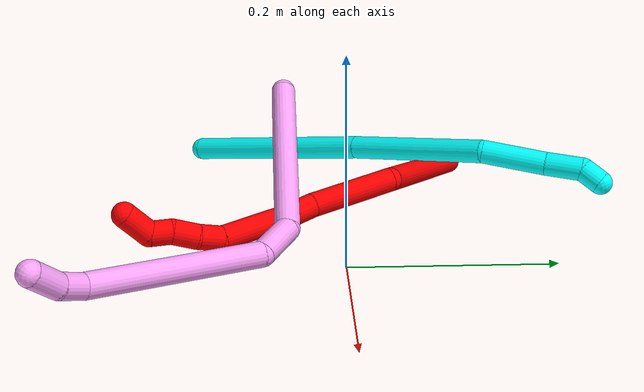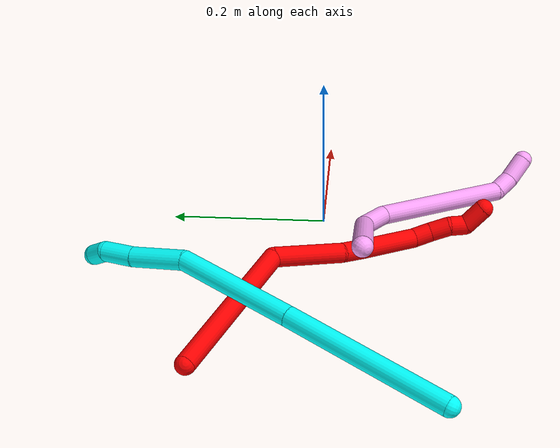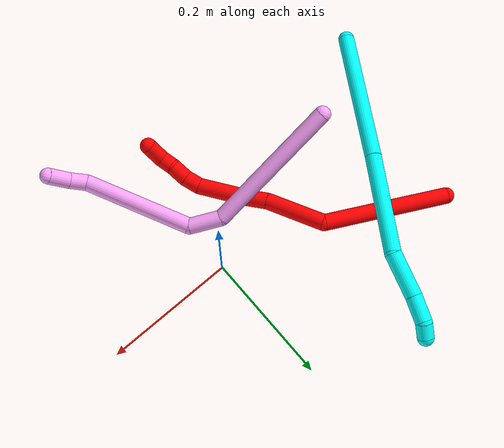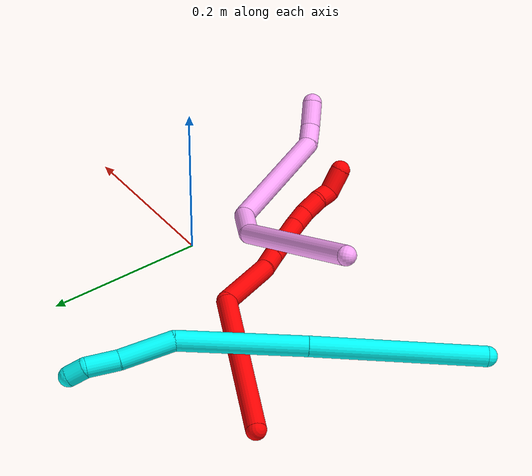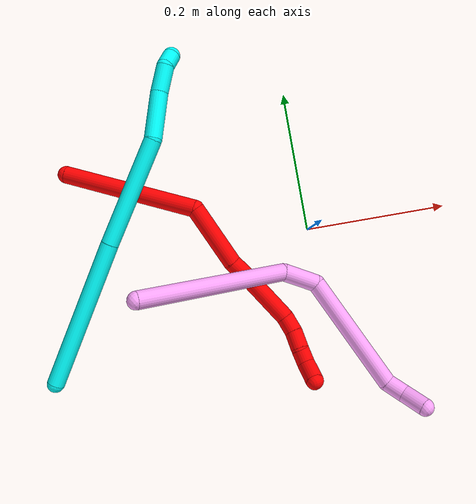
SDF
<sdf version="1.7">
 <world name="default">
  <model name="2">
   <static>0</static>
   <link name="2">
    <collision name="collision-cylinder-e_1_1_4">
     <pose>0.08837 -0.015561 -0.040432 2.77421 1.11498 2.56236</pose>
     <geometry><cylinder><radius>0.0125</radius><length>0.196837</length></cylinder></geometry>
     <surface>
      <friction><ode><mu>1.16</mu><mu2>1.16</mu2><slip1>0</slip1><slip2>0</slip2></ode></friction>
      <contact><ode><kp>1e+06</kp><kd>1</kd><max_vel>0</max_vel><min_depth>0.001</min_depth></ode></contact>
     </surface>
    </collision>
    <visual name="visual-cylinder-e_1_1_4">
     <pose>0.08837 -0.015561 -0.040432 2.77421 1.11498 2.56236</pose>
     <geometry><cylinder><radius>0.0125</radius><length>0.196837</length></cylinder></geometry>
     <material><ambient>1 0 0 1</ambient></material>
    </visual>
    <collision name="collision-cylinder-e_2_4_5">
     <pose>0.202734 -0.067827 -0.090575 1.8294 0.600317 0.764512</pose>
     <geometry><cylinder><radius>0.0125</radius><length>0.092027</length></cylinder></geometry>
     <surface>
      <friction><ode><mu>1.16</mu><mu2>1.16</mu2><slip1>0</slip1><slip2>0</slip2></ode></friction>
      <contact><ode><kp>1e+06</kp><kd>1</kd><max_vel>0</max_vel><min_depth>0.001</min_depth></ode></contact>
     </surface>
    </collision>
    <visual name="visual-cylinder-e_2_4_5">
     <pose>0.202734 -0.067827 -0.090575 1.8294 0.600317 0.764512</pose>
     <geometry><cylinder><radius>0.0125</radius><length>0.092027</length></cylinder></geometry>
     <material><ambient>1 0 0 1</ambient></material>
    </visual>
    <collision name="collision-cylinder-e_3_5_6">
     <pose>0.23849 -0.11492 -0.10571 2.05214 0.694645 1.07713</pose>
     <geometry><cylinder><radius>0.0125</radius><length>0.030505</length></cylinder></geometry>
     <surface>
      <friction><ode><mu>1.16</mu><mu2>1.16</mu2><slip1>0</slip1><slip2>0</slip2></ode></friction>
      <contact><ode><kp>1e+06</kp><kd>1</kd><max_vel>0</max_vel><min_depth>0.001</min_depth></ode></contact>
     </surface>
    </collision>
    <visual name="visual-cylinder-e_3_5_6">
     <pose>0.23849 -0.11492 -0.10571 2.05214 0.694645 1.07713</pose>
     <geometry><cylinder><radius>0.0125</radius><length>0.030505</length></cylinder></geometry>
     <material><ambient>1 0 0 1</ambient></material>
    </visual>
    <collision name="collision-cylinder-e_4_6_7">
     <pose>0.274353 -0.152266 -0.121746 1.94577 0.733263 1.02676</pose>
     <geometry><cylinder><radius>0.0125</radius><length>0.077989</length></cylinder></geometry>
     <surface>
      <friction><ode><mu>1.16</mu><mu2>1.16</mu2><slip1>0</slip1><slip2>0</slip2></ode></friction>
      <contact><ode><kp>1e+06</kp><kd>1</kd><max_vel>0</max_vel><min_depth>0.001</min_depth></ode></contact>
     </surface>
    </collision>
    <visual name="visual-cylinder-e_4_6_7">
     <pose>0.274353 -0.152266 -0.121746 1.94577 0.733263 1.02676</pose>
     <geometry><cylinder><radius>0.0125</radius><length>0.077989</length></cylinder></geometry>
     <material><ambient>1 0 0 1</ambient></material>
    </visual>
    <collision name="collision-cylinder-e_5_7_8">
     <pose>0.309256 -0.187269 -0.131206 1.42861 0.82552 0.725757</pose>
     <geometry><cylinder><radius>0.0125</radius><length>0.023962</length></cylinder></geometry>
     <surface>
      <friction><ode><mu>1.16</mu><mu2>1.16</mu2><slip1>0</slip1><slip2>0</slip2></ode></friction>
      <contact><ode><kp>1e+06</kp><kd>1</kd><max_vel>0</max_vel><min_depth>0.001</min_depth></ode></contact>
     </surface>
    </collision>
    <visual name="visual-cylinder-e_5_7_8">
     <pose>0.309256 -0.187269 -0.131206 1.42861 0.82552 0.725757</pose>
     <geometry><cylinder><radius>0.0125</radius><length>0.023962</length></cylinder></geometry>
     <material><ambient>1 0 0 1</ambient></material>
    </visual>
    <collision name="collision-cylinder-e_6_8_9">
     <pose>0.326566 -0.204296 -0.126429 1.18725 0.720477 0.497829</pose>
     <geometry><cylinder><radius>0.0125</radius><length>0.025781</length></cylinder></geometry>
     <surface>
      <friction><ode><mu>1.16</mu><mu2>1.16</mu2><slip1>0</slip1><slip2>0</slip2></ode></friction>
      <contact><ode><kp>1e+06</kp><kd>1</kd><max_vel>0</max_vel><min_depth>0.001</min_depth></ode></contact>
     </surface>
    </collision>
    <visual name="visual-cylinder-e_6_8_9">
     <pose>0.326566 -0.204296 -0.126429 1.18725 0.720477 0.497829</pose>
     <geometry><cylinder><radius>0.0125</radius><length>0.025781</length></cylinder></geometry>
     <material><ambient>1 0 0 1</ambient></material>
    </visual>
    <collision name="collision-cylinder-e_7_9_10">
     <pose>0.340971 -0.222326 -0.122453 1.53204 0.577586 0.556761</pose>
     <geometry><cylinder><radius>0.0125</radius><length>0.021613</length></cylinder></geometry>
     <surface>
      <friction><ode><mu>1.16</mu><mu2>1.16</mu2><slip1>0</slip1><slip2>0</slip2></ode></friction>
      <contact><ode><kp>1e+06</kp><kd>1</kd><max_vel>0</max_vel><min_depth>0.001</min_depth></ode></contact>
     </surface>
    </collision>
    <visual name="visual-cylinder-e_7_9_10">
     <pose>0.340971 -0.222326 -0.122453 1.53204 0.577586 0.556761</pose>
     <geometry><cylinder><radius>0.0125</radius><length>0.021613</length></cylinder></geometry>
     <material><ambient>1 0 0 1</ambient></material>
    </visual>
    <collision name="collision-cylinder-e_8_10_2">
     <pose>0.359637 -0.236097 -0.114395 0.549858 0.9546 0.289722</pose>
     <geometry><cylinder><radius>0.0125</radius><length>0.031285</length></cylinder></geometry>
     <surface>
      <friction><ode><mu>1.16</mu><mu2>1.16</mu2><slip1>0</slip1><slip2>0</slip2></ode></friction>
      <contact><ode><kp>1e+06</kp><kd>1</kd><max_vel>0</max_vel><min_depth>0.001</min_depth></ode></contact>
     </surface>
    </collision>
    <visual name="visual-cylinder-e_8_10_2">
     <pose>0.359637 -0.236097 -0.114395 0.549858 0.9546 0.289722</pose>
     <geometry><cylinder><radius>0.0125</radius><length>0.031285</length></cylinder></geometry>
     <material><ambient>1 0 0 1</ambient></material>
    </visual>
    <collision name="collision-sphere-2">
     <pose>0.372402 -0.240821 -0.106687 0 -0 0</pose>
     <geometry><sphere><radius>0.0125</radius></sphere></geometry>
     <surface>
      <friction><ode><mu>1.16</mu><mu2>1.16</mu2><slip1>0</slip1><slip2>0</slip2></ode></friction>
      <contact><ode><kp>1e+06</kp><kd>1</kd><max_vel>0</max_vel><min_depth>0.001</min_depth></ode></contact>
     </surface>
    </collision>
    <visual name="visual-sphere-2">
     <pose>0.372402 -0.240821 -0.106687 0 -0 0</pose>
     <geometry><sphere><radius>0.0125</radius></sphere></geometry>
     <material><ambient>1 0 0 1</ambient></material>
    </visual>
    <collision name="collision-sphere-10">
     <pose>0.346871 -0.231373 -0.122103 0 -0 0</pose>
     <geometry><sphere><radius>0.0125</radius></sphere></geometry>
     <surface>
      <friction><ode><mu>1.16</mu><mu2>1.16</mu2><slip1>0</slip1><slip2>0</slip2></ode></friction>
      <contact><ode><kp>1e+06</kp><kd>1</kd><max_vel>0</max_vel><min_depth>0.001</min_depth></ode></contact>
     </surface>
    </collision>
    <visual name="visual-sphere-10">
     <pose>0.346871 -0.231373 -0.122103 0 -0 0</pose>
     <geometry><sphere><radius>0.0125</radius></sphere></geometry>
     <material><ambient>1 0 0 1</ambient></material>
    </visual>
    <collision name="collision-sphere-9">
     <pose>0.33507 -0.213279 -0.122804 0 -0 0</pose>
     <geometry><sphere><radius>0.0125</radius></sphere></geometry>
     <surface>
      <friction><ode><mu>1.16</mu><mu2>1.16</mu2><slip1>0</slip1><slip2>0</slip2></ode></friction>
      <contact><ode><kp>1e+06</kp><kd>1</kd><max_vel>0</max_vel><min_depth>0.001</min_depth></ode></contact>
     </surface>
    </collision>
    <visual name="visual-sphere-9">
     <pose>0.33507 -0.213279 -0.122804 0 -0 0</pose>
     <geometry><sphere><radius>0.0125</radius></sphere></geometry>
     <material><ambient>1 0 0 1</ambient></material>
    </visual>
    <collision name="collision-sphere-4">
     <pose>0.17674 -0.031121 -0.080865 0 -0 0</pose>
     <geometry><sphere><radius>0.0125</radius></sphere></geometry>
     <surface>
      <friction><ode><mu>1.16</mu><mu2>1.16</mu2><slip1>0</slip1><slip2>0</slip2></ode></friction>
      <contact><ode><kp>1e+06</kp><kd>1</kd><max_vel>0</max_vel><min_depth>0.001</min_depth></ode></contact>
     </surface>
    </collision>
    <visual name="visual-sphere-4">
     <pose>0.17674 -0.031121 -0.080865 0 -0 0</pose>
     <geometry><sphere><radius>0.0125</radius></sphere></geometry>
     <material><ambient>1 0 0 1</ambient></material>
    </visual>
    <collision name="collision-sphere-1">
     <geometry><sphere><radius>0.0125</radius></sphere></geometry>
     <surface>
      <friction><ode><mu>1.16</mu><mu2>1.16</mu2><slip1>0</slip1><slip2>0</slip2></ode></friction>
      <contact><ode><kp>1e+06</kp><kd>1</kd><max_vel>0</max_vel><min_depth>0.001</min_depth></ode></contact>
     </surface>
    </collision>
    <visual name="visual-sphere-1">
     <geometry><sphere><radius>0.0125</radius></sphere></geometry>
     <material><ambient>1 0 0 1</ambient></material>
    </visual>
    <collision name="collision-sphere-8">
     <pose>0.318061 -0.195313 -0.130054 0 -0 0</pose>
     <geometry><sphere><radius>0.0125</radius></sphere></geometry>
     <surface>
      <friction><ode><mu>1.16</mu><mu2>1.16</mu2><slip1>0</slip1><slip2>0</slip2></ode></friction>
      <contact><ode><kp>1e+06</kp><kd>1</kd><max_vel>0</max_vel><min_depth>0.001</min_depth></ode></contact>
     </surface>
    </collision>
    <visual name="visual-sphere-8">
     <pose>0.318061 -0.195313 -0.130054 0 -0 0</pose>
     <geometry><sphere><radius>0.0125</radius></sphere></geometry>
     <material><ambient>1 0 0 1</ambient></material>
    </visual>
    <collision name="collision-sphere-5">
     <pose>0.228727 -0.104533 -0.100284 0 -0 0</pose>
     <geometry><sphere><radius>0.0125</radius></sphere></geometry>
     <surface>
      <friction><ode><mu>1.16</mu><mu2>1.16</mu2><slip1>0</slip1><slip2>0</slip2></ode></friction>
      <contact><ode><kp>1e+06</kp><kd>1</kd><max_vel>0</max_vel><min_depth>0.001</min_depth></ode></contact>
     </surface>
    </collision>
    <visual name="visual-sphere-5">
     <pose>0.228727 -0.104533 -0.100284 0 -0 0</pose>
     <geometry><sphere><radius>0.0125</radius></sphere></geometry>
     <material><ambient>1 0 0 1</ambient></material>
    </visual>
    <collision name="collision-sphere-6">
     <pose>0.248254 -0.125307 -0.111135 0 -0 0</pose>
     <geometry><sphere><radius>0.0125</radius></sphere></geometry>
     <surface>
      <friction><ode><mu>1.16</mu><mu2>1.16</mu2><slip1>0</slip1><slip2>0</slip2></ode></friction>
      <contact><ode><kp>1e+06</kp><kd>1</kd><max_vel>0</max_vel><min_depth>0.001</min_depth></ode></contact>
     </surface>
    </collision>
    <visual name="visual-sphere-6">
     <pose>0.248254 -0.125307 -0.111135 0 -0 0</pose>
     <geometry><sphere><radius>0.0125</radius></sphere></geometry>
     <material><ambient>1 0 0 1</ambient></material>
    </visual>
    <collision name="collision-sphere-7">
     <pose>0.300451 -0.179226 -0.132357 0 -0 0</pose>
     <geometry><sphere><radius>0.0125</radius></sphere></geometry>
     <surface>
      <friction><ode><mu>1.16</mu><mu2>1.16</mu2><slip1>0</slip1><slip2>0</slip2></ode></friction>
      <contact><ode><kp>1e+06</kp><kd>1</kd><max_vel>0</max_vel><min_depth>0.001</min_depth></ode></contact>
     </surface>
    </collision>
    <visual name="visual-sphere-7">
     <pose>0.300451 -0.179226 -0.132357 0 -0 0</pose>
     <geometry><sphere><radius>0.0125</radius></sphere></geometry>
     <material><ambient>1 0 0 1</ambient></material>
    </visual>
    <inertial>
     <pose>0.198347 -0.093263 -0.083285 0 -0 0</pose>
     <mass>0.5</mass>
     <inertia>
      <ixx>8.3e-05</ixx>
      <ixy>0</ixy>
      <ixz>0</ixz>
      <iyy>0.00086</iyy>
      <iyz>0</iyz>
      <izz>-0.000469</izz>
     </inertia>
    </inertial>
   </link>
   <pose>-0.328457 0.136236 0.011935 0.535901 -0.600069 -0.514271</pose>
  </model>
  <model name="3">
   <static>0</static>
   <link name="3">
    <collision name="collision-cylinder-e_1_1_4">
     <pose>0.033518 0.037957 -0.093852 -2.75727 0.319726 -1.38402</pose>
     <geometry><cylinder><radius>0.0125</radius><length>0.213283</length></cylinder></geometry>
     <surface>
      <friction><ode><mu>1.16</mu><mu2>1.16</mu2><slip1>0</slip1><slip2>0</slip2></ode></friction>
      <contact><ode><kp>1e+06</kp><kd>1</kd><max_vel>0</max_vel><min_depth>0.001</min_depth></ode></contact>
     </surface>
    </collision>
    <visual name="visual-cylinder-e_1_1_4">
     <pose>0.033518 0.037957 -0.093852 -2.75727 0.319726 -1.38402</pose>
     <geometry><cylinder><radius>0.0125</radius><length>0.213283</length></cylinder></geometry>
     <material><ambient>0.003922 1 0.996078 1</ambient></material>
    </visual>
    <collision name="collision-cylinder-e_2_4_5">
     <pose>0.093978 0.104386 -0.254952 -2.7411 0.353443 -1.44315</pose>
     <geometry><cylinder><radius>0.0125</radius><length>0.155676</length></cylinder></geometry>
     <surface>
      <friction><ode><mu>1.16</mu><mu2>1.16</mu2><slip1>0</slip1><slip2>0</slip2></ode></friction>
      <contact><ode><kp>1e+06</kp><kd>1</kd><max_vel>0</max_vel><min_depth>0.001</min_depth></ode></contact>
     </surface>
    </collision>
    <visual name="visual-cylinder-e_2_4_5">
     <pose>0.093978 0.104386 -0.254952 -2.7411 0.353443 -1.44315</pose>
     <geometry><cylinder><radius>0.0125</radius><length>0.155676</length></cylinder></geometry>
     <material><ambient>0.003922 1 0.996078 1</ambient></material>
    </visual>
    <collision name="collision-cylinder-e_3_5_6">
     <pose>0.138835 0.133852 -0.351174 -3.10727 0.553513 -3.0209</pose>
     <geometry><cylinder><radius>0.0125</radius><length>0.06816</length></cylinder></geometry>
     <surface>
      <friction><ode><mu>1.16</mu><mu2>1.16</mu2><slip1>0</slip1><slip2>0</slip2></ode></friction>
      <contact><ode><kp>1e+06</kp><kd>1</kd><max_vel>0</max_vel><min_depth>0.001</min_depth></ode></contact>
     </surface>
    </collision>
    <visual name="visual-cylinder-e_3_5_6">
     <pose>0.138835 0.133852 -0.351174 -3.10727 0.553513 -3.0209</pose>
     <geometry><cylinder><radius>0.0125</radius><length>0.06816</length></cylinder></geometry>
     <material><ambient>0.003922 1 0.996078 1</ambient></material>
    </visual>
    <collision name="collision-cylinder-e_4_6_7">
     <pose>0.166303 0.137612 -0.397283 -2.98162 0.503124 -2.53695</pose>
     <geometry><cylinder><radius>0.0125</radius><length>0.039623</length></cylinder></geometry>
     <surface>
      <friction><ode><mu>1.16</mu><mu2>1.16</mu2><slip1>0</slip1><slip2>0</slip2></ode></friction>
      <contact><ode><kp>1e+06</kp><kd>1</kd><max_vel>0</max_vel><min_depth>0.001</min_depth></ode></contact>
     </surface>
    </collision>
    <visual name="visual-cylinder-e_4_6_7">
     <pose>0.166303 0.137612 -0.397283 -2.98162 0.503124 -2.53695</pose>
     <geometry><cylinder><radius>0.0125</radius><length>0.039623</length></cylinder></geometry>
     <material><ambient>0.003922 1 0.996078 1</ambient></material>
    </visual>
    <collision name="collision-cylinder-e_5_7_2">
     <pose>0.185615 0.142105 -0.420499 -2.86458 0.995979 -2.63963</pose>
     <geometry><cylinder><radius>0.0125</radius><length>0.023258</length></cylinder></geometry>
     <surface>
      <friction><ode><mu>1.16</mu><mu2>1.16</mu2><slip1>0</slip1><slip2>0</slip2></ode></friction>
      <contact><ode><kp>1e+06</kp><kd>1</kd><max_vel>0</max_vel><min_depth>0.001</min_depth></ode></contact>
     </surface>
    </collision>
    <visual name="visual-cylinder-e_5_7_2">
     <pose>0.185615 0.142105 -0.420499 -2.86458 0.995979 -2.63963</pose>
     <geometry><cylinder><radius>0.0125</radius><length>0.023258</length></cylinder></geometry>
     <material><ambient>0.003922 1 0.996078 1</ambient></material>
    </visual>
    <collision name="collision-sphere-2">
     <pose>0.195375 0.143834 -0.426581 0 -0 0</pose>
     <geometry><sphere><radius>0.0125</radius></sphere></geometry>
     <surface>
      <friction><ode><mu>1.16</mu><mu2>1.16</mu2><slip1>0</slip1><slip2>0</slip2></ode></friction>
      <contact><ode><kp>1e+06</kp><kd>1</kd><max_vel>0</max_vel><min_depth>0.001</min_depth></ode></contact>
     </surface>
    </collision>
    <visual name="visual-sphere-2">
     <pose>0.195375 0.143834 -0.426581 0 -0 0</pose>
     <geometry><sphere><radius>0.0125</radius></sphere></geometry>
     <material><ambient>0.003922 1 0.996078 1</ambient></material>
    </visual>
    <collision name="collision-sphere-7">
     <pose>0.175855 0.140376 -0.414418 0 -0 0</pose>
     <geometry><sphere><radius>0.0125</radius></sphere></geometry>
     <surface>
      <friction><ode><mu>1.16</mu><mu2>1.16</mu2><slip1>0</slip1><slip2>0</slip2></ode></friction>
      <contact><ode><kp>1e+06</kp><kd>1</kd><max_vel>0</max_vel><min_depth>0.001</min_depth></ode></contact>
     </surface>
    </collision>
    <visual name="visual-sphere-7">
     <pose>0.175855 0.140376 -0.414418 0 -0 0</pose>
     <geometry><sphere><radius>0.0125</radius></sphere></geometry>
     <material><ambient>0.003922 1 0.996078 1</ambient></material>
    </visual>
    <collision name="collision-sphere-6">
     <pose>0.156751 0.134847 -0.380148 0 -0 0</pose>
     <geometry><sphere><radius>0.0125</radius></sphere></geometry>
     <surface>
      <friction><ode><mu>1.16</mu><mu2>1.16</mu2><slip1>0</slip1><slip2>0</slip2></ode></friction>
      <contact><ode><kp>1e+06</kp><kd>1</kd><max_vel>0</max_vel><min_depth>0.001</min_depth></ode></contact>
     </surface>
    </collision>
    <visual name="visual-sphere-6">
     <pose>0.156751 0.134847 -0.380148 0 -0 0</pose>
     <geometry><sphere><radius>0.0125</radius></sphere></geometry>
     <material><ambient>0.003922 1 0.996078 1</ambient></material>
    </visual>
    <collision name="collision-sphere-5">
     <pose>0.12092 0.132857 -0.3222 0 -0 0</pose>
     <geometry><sphere><radius>0.0125</radius></sphere></geometry>
     <surface>
      <friction><ode><mu>1.16</mu><mu2>1.16</mu2><slip1>0</slip1><slip2>0</slip2></ode></friction>
      <contact><ode><kp>1e+06</kp><kd>1</kd><max_vel>0</max_vel><min_depth>0.001</min_depth></ode></contact>
     </surface>
    </collision>
    <visual name="visual-sphere-5">
     <pose>0.12092 0.132857 -0.3222 0 -0 0</pose>
     <geometry><sphere><radius>0.0125</radius></sphere></geometry>
     <material><ambient>0.003922 1 0.996078 1</ambient></material>
    </visual>
    <collision name="collision-sphere-1">
     <geometry><sphere><radius>0.0125</radius></sphere></geometry>
     <surface>
      <friction><ode><mu>1.16</mu><mu2>1.16</mu2><slip1>0</slip1><slip2>0</slip2></ode></friction>
      <contact><ode><kp>1e+06</kp><kd>1</kd><max_vel>0</max_vel><min_depth>0.001</min_depth></ode></contact>
     </surface>
    </collision>
    <visual name="visual-sphere-1">
     <geometry><sphere><radius>0.0125</radius></sphere></geometry>
     <material><ambient>0.003922 1 0.996078 1</ambient></material>
    </visual>
    <collision name="collision-sphere-4">
     <pose>0.067036 0.075915 -0.187704 0 -0 0</pose>
     <geometry><sphere><radius>0.0125</radius></sphere></geometry>
     <surface>
      <friction><ode><mu>1.16</mu><mu2>1.16</mu2><slip1>0</slip1><slip2>0</slip2></ode></friction>
      <contact><ode><kp>1e+06</kp><kd>1</kd><max_vel>0</max_vel><min_depth>0.001</min_depth></ode></contact>
     </surface>
    </collision>
    <visual name="visual-sphere-4">
     <pose>0.067036 0.075915 -0.187704 0 -0 0</pose>
     <geometry><sphere><radius>0.0125</radius></sphere></geometry>
     <material><ambient>0.003922 1 0.996078 1</ambient></material>
    </visual>
    <inertial>
     <pose>0.084297 0.084454 -0.218329 0 -0 0</pose>
     <mass>0.5</mass>
     <inertia>
      <ixx>-0.0009</ixx>
      <ixy>0</ixy>
      <ixz>0</ixz>
      <iyy>-0.00106</iyy>
      <iyz>0</iyz>
      <izz>-0.000831</izz>
     </inertia>
    </inertial>
   </link>
   <pose>-0.388305 -0.154508 0.016226 2.63567 1.11646 0.897455</pose>
  </model>
  <model name="4">
   <static>0</static>
   <link name="4">
    <collision name="collision-cylinder-e_1_1_4">
     <pose>0.04046 -0.051388 0.085904 0.539097 0.384117 0.107342</pose>
     <geometry><cylinder><radius>0.0125</radius><length>0.215938</length></cylinder></geometry>
     <surface>
      <friction><ode><mu>1.16</mu><mu2>1.16</mu2><slip1>0</slip1><slip2>0</slip2></ode></friction>
      <contact><ode><kp>1e+06</kp><kd>1</kd><max_vel>0</max_vel><min_depth>0.001</min_depth></ode></contact>
     </surface>
    </collision>
    <visual name="visual-cylinder-e_1_1_4">
     <pose>0.04046 -0.051388 0.085904 0.539097 0.384117 0.107342</pose>
     <geometry><cylinder><radius>0.0125</radius><length>0.215938</length></cylinder></geometry>
     <material><ambient>1 0.65098 0.996078 1</ambient></material>
    </visual>
    <collision name="collision-cylinder-e_2_4_5">
     <pose>0.085613 -0.124439 0.183807 1.06497 0.187253 0.110551</pose>
     <geometry><cylinder><radius>0.0125</radius><length>0.050409</length></cylinder></geometry>
     <surface>
      <friction><ode><mu>1.16</mu><mu2>1.16</mu2><slip1>0</slip1><slip2>0</slip2></ode></friction>
      <contact><ode><kp>1e+06</kp><kd>1</kd><max_vel>0</max_vel><min_depth>0.001</min_depth></ode></contact>
     </surface>
    </collision>
    <visual name="visual-cylinder-e_2_4_5">
     <pose>0.085613 -0.124439 0.183807 1.06497 0.187253 0.110551</pose>
     <geometry><cylinder><radius>0.0125</radius><length>0.050409</length></cylinder></geometry>
     <material><ambient>1 0.65098 0.996078 1</ambient></material>
    </visual>
    <collision name="collision-cylinder-e_3_5_6">
     <pose>0.09497 -0.231037 0.184353 1.70483 0.054377 0.062197</pose>
     <geometry><cylinder><radius>0.0125</radius><length>0.171662</length></cylinder></geometry>
     <surface>
      <friction><ode><mu>1.16</mu><mu2>1.16</mu2><slip1>0</slip1><slip2>0</slip2></ode></friction>
      <contact><ode><kp>1e+06</kp><kd>1</kd><max_vel>0</max_vel><min_depth>0.001</min_depth></ode></contact>
     </surface>
    </collision>
    <visual name="visual-cylinder-e_3_5_6">
     <pose>0.09497 -0.231037 0.184353 1.70483 0.054377 0.062197</pose>
     <geometry><cylinder><radius>0.0125</radius><length>0.171662</length></cylinder></geometry>
     <material><ambient>1 0.65098 0.996078 1</ambient></material>
    </visual>
    <collision name="collision-cylinder-e_4_6_7">
     <pose>0.09588 -0.32894 0.175789 1.35157 -0.275456 -0.221337</pose>
     <geometry><cylinder><radius>0.0125</radius><length>0.027612</length></cylinder></geometry>
     <surface>
      <friction><ode><mu>1.16</mu><mu2>1.16</mu2><slip1>0</slip1><slip2>0</slip2></ode></friction>
      <contact><ode><kp>1e+06</kp><kd>1</kd><max_vel>0</max_vel><min_depth>0.001</min_depth></ode></contact>
     </surface>
    </collision>
    <visual name="visual-cylinder-e_4_6_7">
     <pose>0.09588 -0.32894 0.175789 1.35157 -0.275456 -0.221337</pose>
     <geometry><cylinder><radius>0.0125</radius><length>0.027612</length></cylinder></geometry>
     <material><ambient>1 0.65098 0.996078 1</ambient></material>
    </visual>
    <collision name="collision-cylinder-e_5_7_2">
     <pose>0.082571 -0.355937 0.181394 1.37958 -0.589273 -0.490627</pose>
     <geometry><cylinder><radius>0.0125</radius><length>0.03438</length></cylinder></geometry>
     <surface>
      <friction><ode><mu>1.16</mu><mu2>1.16</mu2><slip1>0</slip1><slip2>0</slip2></ode></friction>
      <contact><ode><kp>1e+06</kp><kd>1</kd><max_vel>0</max_vel><min_depth>0.001</min_depth></ode></contact>
     </surface>
    </collision>
    <visual name="visual-cylinder-e_5_7_2">
     <pose>0.082571 -0.355937 0.181394 1.37958 -0.589273 -0.490627</pose>
     <geometry><cylinder><radius>0.0125</radius><length>0.03438</length></cylinder></geometry>
     <material><ambient>1 0.65098 0.996078 1</ambient></material>
    </visual>
    <collision name="collision-sphere-2">
     <pose>0.073018 -0.369968 0.18411 0 -0 0</pose>
     <geometry><sphere><radius>0.0125</radius></sphere></geometry>
     <surface>
      <friction><ode><mu>1.16</mu><mu2>1.16</mu2><slip1>0</slip1><slip2>0</slip2></ode></friction>
      <contact><ode><kp>1e+06</kp><kd>1</kd><max_vel>0</max_vel><min_depth>0.001</min_depth></ode></contact>
     </surface>
    </collision>
    <visual name="visual-sphere-2">
     <pose>0.073018 -0.369968 0.18411 0 -0 0</pose>
     <geometry><sphere><radius>0.0125</radius></sphere></geometry>
     <material><ambient>1 0.65098 0.996078 1</ambient></material>
    </visual>
    <collision name="collision-sphere-7">
     <pose>0.092125 -0.341907 0.178678 0 -0 0</pose>
     <geometry><sphere><radius>0.0125</radius></sphere></geometry>
     <surface>
      <friction><ode><mu>1.16</mu><mu2>1.16</mu2><slip1>0</slip1><slip2>0</slip2></ode></friction>
      <contact><ode><kp>1e+06</kp><kd>1</kd><max_vel>0</max_vel><min_depth>0.001</min_depth></ode></contact>
     </surface>
    </collision>
    <visual name="visual-sphere-7">
     <pose>0.092125 -0.341907 0.178678 0 -0 0</pose>
     <geometry><sphere><radius>0.0125</radius></sphere></geometry>
     <material><ambient>1 0.65098 0.996078 1</ambient></material>
    </visual>
    <collision name="collision-sphere-6">
     <pose>0.099635 -0.315972 0.172899 0 -0 0</pose>
     <geometry><sphere><radius>0.0125</radius></sphere></geometry>
     <surface>
      <friction><ode><mu>1.16</mu><mu2>1.16</mu2><slip1>0</slip1><slip2>0</slip2></ode></friction>
      <contact><ode><kp>1e+06</kp><kd>1</kd><max_vel>0</max_vel><min_depth>0.001</min_depth></ode></contact>
     </surface>
    </collision>
    <visual name="visual-sphere-6">
     <pose>0.099635 -0.315972 0.172899 0 -0 0</pose>
     <geometry><sphere><radius>0.0125</radius></sphere></geometry>
     <material><ambient>1 0.65098 0.996078 1</ambient></material>
    </visual>
    <collision name="collision-sphere-5">
     <pose>0.090305 -0.146101 0.195806 0 -0 0</pose>
     <geometry><sphere><radius>0.0125</radius></sphere></geometry>
     <surface>
      <friction><ode><mu>1.16</mu><mu2>1.16</mu2><slip1>0</slip1><slip2>0</slip2></ode></friction>
      <contact><ode><kp>1e+06</kp><kd>1</kd><max_vel>0</max_vel><min_depth>0.001</min_depth></ode></contact>
     </surface>
    </collision>
    <visual name="visual-sphere-5">
     <pose>0.090305 -0.146101 0.195806 0 -0 0</pose>
     <geometry><sphere><radius>0.0125</radius></sphere></geometry>
     <material><ambient>1 0.65098 0.996078 1</ambient></material>
    </visual>
    <collision name="collision-sphere-1">
     <geometry><sphere><radius>0.0125</radius></sphere></geometry>
     <surface>
      <friction><ode><mu>1.16</mu><mu2>1.16</mu2><slip1>0</slip1><slip2>0</slip2></ode></friction>
      <contact><ode><kp>1e+06</kp><kd>1</kd><max_vel>0</max_vel><min_depth>0.001</min_depth></ode></contact>
     </surface>
    </collision>
    <visual name="visual-sphere-1">
     <geometry><sphere><radius>0.0125</radius></sphere></geometry>
     <material><ambient>1 0.65098 0.996078 1</ambient></material>
    </visual>
    <collision name="collision-sphere-4">
     <pose>0.080921 -0.102776 0.171808 0 -0 0</pose>
     <geometry><sphere><radius>0.0125</radius></sphere></geometry>
     <surface>
      <friction><ode><mu>1.16</mu><mu2>1.16</mu2><slip1>0</slip1><slip2>0</slip2></ode></friction>
      <contact><ode><kp>1e+06</kp><kd>1</kd><max_vel>0</max_vel><min_depth>0.001</min_depth></ode></contact>
     </surface>
    </collision>
    <visual name="visual-sphere-4">
     <pose>0.080921 -0.102776 0.171808 0 -0 0</pose>
     <geometry><sphere><radius>0.0125</radius></sphere></geometry>
     <material><ambient>1 0.65098 0.996078 1</ambient></material>
    </visual>
    <inertial>
     <pose>0.069683 -0.156699 0.141104 0 -0 0</pose>
     <mass>0.5</mass>
     <inertia>
      <ixx>0.001342</ixx>
      <ixy>0</ixy>
      <ixz>0</ixz>
      <iyy>0.000775</iyy>
      <iyz>0</iyz>
      <izz>0.000519</izz>
     </inertia>
    </inertial>
   </link>
   <pose>-0.240072 -0.0564 0.117579 -2.8064 1.46664 -2.2219</pose>
  </model>
 </world>
</sdf>
